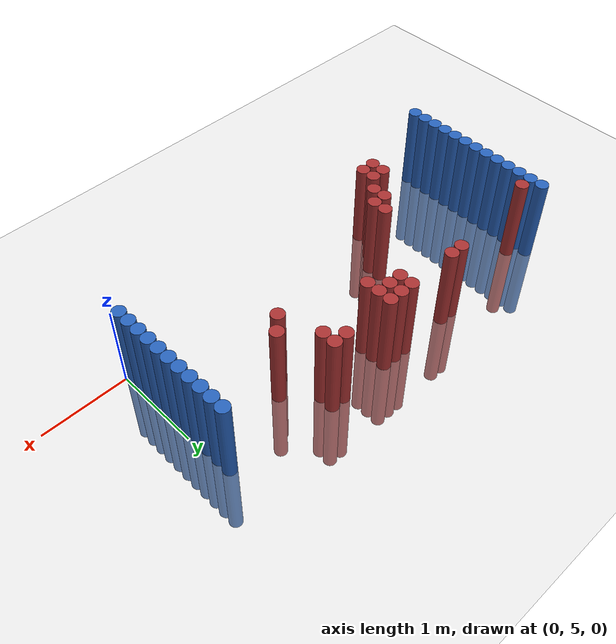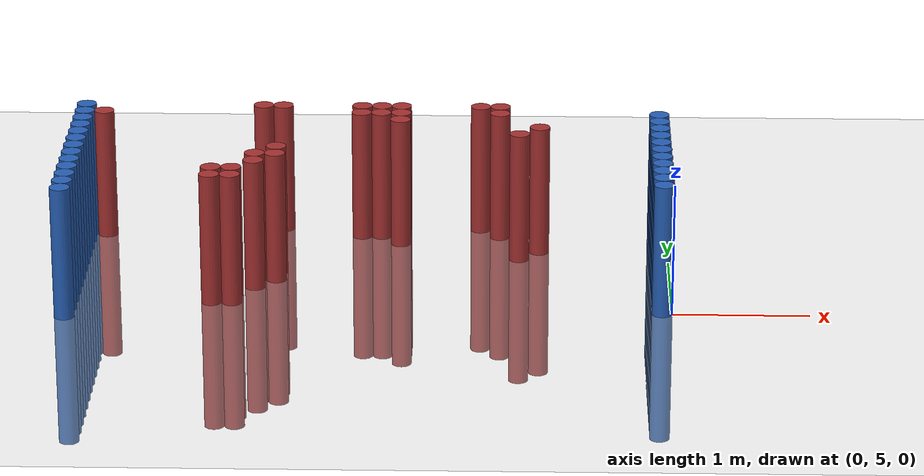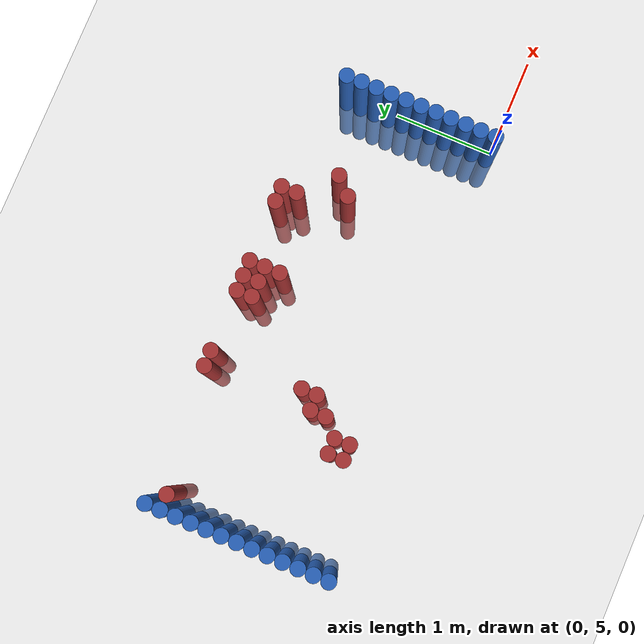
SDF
<sdf version="1.6">
 <world name="default">
  <model name="ground_plane">
   <static>1</static>
   <link name="link">
    <collision name="collision">
     <geometry><plane><normal>0 0 1</normal><size>100 100</size></plane></geometry>
     <surface><friction><ode><mu>100</mu><mu2>50</mu2></ode></friction></surface>
    </collision>
    <visual name="visual">
     <cast_shadows>0</cast_shadows>
     <geometry><plane><normal>0 0 1</normal><size>100 100</size></plane></geometry>
     <material>
      <script><uri>file://media/materials/scripts/gazebo.material</uri><name>Gazebo/Grey</name></script>
     </material>
    </visual>
   </link>
  </model>
  <model name="unit_cylinder_93">
   <static>1</static>
   <pose>-4.425000 4.875000 0.000000 0.000000 0.000000 0.000000</pose>
   <link name="link">
    <inertial>
     <mass>1</mass>
     <inertia><ixx>0.145833</ixx><ixy>0</ixy><ixz>0</ixz><iyy>0.145833</iyy><iyz>0</iyz><izz>0.125</izz></inertia>
    </inertial>
    <collision name="collision">
     <geometry><cylinder><radius>0.075000</radius><length>2</length></cylinder></geometry>
    </collision>
    <visual name="visual">
     <geometry><cylinder><radius>0.075000</radius><length>2</length></cylinder></geometry>
     <material>
      <ambient>0.152000 0.379000 0.720000 1</ambient>
      <diffuse>0.152000 0.379000 0.720000 1</diffuse>
     </material>
     <material>
      <script><name>Gazebo/Grey</name><uri>file://media/materials/scripts/gazebo.material</uri></script>
     </material>
    </visual>
   </link>
  </model>
  <model name="unit_cylinder_94">
   <static>1</static>
   <pose>-0.075000 5.025000 0.000000 0.000000 0.000000 0.000000</pose>
   <link name="link">
    <inertial>
     <mass>1</mass>
     <inertia><ixx>0.145833</ixx><ixy>0</ixy><ixz>0</ixz><iyy>0.145833</iyy><iyz>0</iyz><izz>0.125</izz></inertia>
    </inertial>
    <collision name="collision">
     <geometry><cylinder><radius>0.075000</radius><length>2</length></cylinder></geometry>
    </collision>
    <visual name="visual">
     <geometry><cylinder><radius>0.075000</radius><length>2</length></cylinder></geometry>
     <material>
      <ambient>0.152000 0.379000 0.720000 1</ambient>
      <diffuse>0.152000 0.379000 0.720000 1</diffuse>
     </material>
     <material>
      <script><name>Gazebo/Grey</name><uri>file://media/materials/scripts/gazebo.material</uri></script>
     </material>
    </visual>
   </link>
  </model>
  <model name="unit_cylinder_95">
   <static>1</static>
   <pose>-4.425000 5.025000 0.000000 0.000000 0.000000 0.000000</pose>
   <link name="link">
    <inertial>
     <mass>1</mass>
     <inertia><ixx>0.145833</ixx><ixy>0</ixy><ixz>0</ixz><iyy>0.145833</iyy><iyz>0</iyz><izz>0.125</izz></inertia>
    </inertial>
    <collision name="collision">
     <geometry><cylinder><radius>0.075000</radius><length>2</length></cylinder></geometry>
    </collision>
    <visual name="visual">
     <geometry><cylinder><radius>0.075000</radius><length>2</length></cylinder></geometry>
     <material>
      <ambient>0.152000 0.379000 0.720000 1</ambient>
      <diffuse>0.152000 0.379000 0.720000 1</diffuse>
     </material>
     <material>
      <script><name>Gazebo/Grey</name><uri>file://media/materials/scripts/gazebo.material</uri></script>
     </material>
    </visual>
   </link>
  </model>
  <model name="unit_cylinder_96">
   <static>1</static>
   <pose>-4.425000 5.175000 0.000000 0.000000 0.000000 0.000000</pose>
   <link name="link">
    <inertial>
     <mass>1</mass>
     <inertia><ixx>0.145833</ixx><ixy>0</ixy><ixz>0</ixz><iyy>0.145833</iyy><iyz>0</iyz><izz>0.125</izz></inertia>
    </inertial>
    <collision name="collision">
     <geometry><cylinder><radius>0.075000</radius><length>2</length></cylinder></geometry>
    </collision>
    <visual name="visual">
     <geometry><cylinder><radius>0.075000</radius><length>2</length></cylinder></geometry>
     <material>
      <ambient>0.152000 0.379000 0.720000 1</ambient>
      <diffuse>0.152000 0.379000 0.720000 1</diffuse>
     </material>
     <material>
      <script><name>Gazebo/Grey</name><uri>file://media/materials/scripts/gazebo.material</uri></script>
     </material>
    </visual>
   </link>
  </model>
  <model name="unit_cylinder_97">
   <static>1</static>
   <pose>-4.425000 5.325000 0.000000 0.000000 0.000000 0.000000</pose>
   <link name="link">
    <inertial>
     <mass>1</mass>
     <inertia><ixx>0.145833</ixx><ixy>0</ixy><ixz>0</ixz><iyy>0.145833</iyy><iyz>0</iyz><izz>0.125</izz></inertia>
    </inertial>
    <collision name="collision">
     <geometry><cylinder><radius>0.075000</radius><length>2</length></cylinder></geometry>
    </collision>
    <visual name="visual">
     <geometry><cylinder><radius>0.075000</radius><length>2</length></cylinder></geometry>
     <material>
      <ambient>0.152000 0.379000 0.720000 1</ambient>
      <diffuse>0.152000 0.379000 0.720000 1</diffuse>
     </material>
     <material>
      <script><name>Gazebo/Grey</name><uri>file://media/materials/scripts/gazebo.material</uri></script>
     </material>
    </visual>
   </link>
  </model>
  <model name="unit_cylinder_98">
   <static>1</static>
   <pose>-4.425000 5.475000 0.000000 0.000000 0.000000 0.000000</pose>
   <link name="link">
    <inertial>
     <mass>1</mass>
     <inertia><ixx>0.145833</ixx><ixy>0</ixy><ixz>0</ixz><iyy>0.145833</iyy><iyz>0</iyz><izz>0.125</izz></inertia>
    </inertial>
    <collision name="collision">
     <geometry><cylinder><radius>0.075000</radius><length>2</length></cylinder></geometry>
    </collision>
    <visual name="visual">
     <geometry><cylinder><radius>0.075000</radius><length>2</length></cylinder></geometry>
     <material>
      <ambient>0.152000 0.379000 0.720000 1</ambient>
      <diffuse>0.152000 0.379000 0.720000 1</diffuse>
     </material>
     <material>
      <script><name>Gazebo/Grey</name><uri>file://media/materials/scripts/gazebo.material</uri></script>
     </material>
    </visual>
   </link>
  </model>
  <model name="unit_cylinder_99">
   <static>1</static>
   <pose>-4.425000 5.625000 0.000000 0.000000 0.000000 0.000000</pose>
   <link name="link">
    <inertial>
     <mass>1</mass>
     <inertia><ixx>0.145833</ixx><ixy>0</ixy><ixz>0</ixz><iyy>0.145833</iyy><iyz>0</iyz><izz>0.125</izz></inertia>
    </inertial>
    <collision name="collision">
     <geometry><cylinder><radius>0.075000</radius><length>2</length></cylinder></geometry>
    </collision>
    <visual name="visual">
     <geometry><cylinder><radius>0.075000</radius><length>2</length></cylinder></geometry>
     <material>
      <ambient>0.152000 0.379000 0.720000 1</ambient>
      <diffuse>0.152000 0.379000 0.720000 1</diffuse>
     </material>
     <material>
      <script><name>Gazebo/Grey</name><uri>file://media/materials/scripts/gazebo.material</uri></script>
     </material>
    </visual>
   </link>
  </model>
  <model name="unit_cylinder_100">
   <static>1</static>
   <pose>-4.425000 5.775000 0.000000 0.000000 0.000000 0.000000</pose>
   <link name="link">
    <inertial>
     <mass>1</mass>
     <inertia><ixx>0.145833</ixx><ixy>0</ixy><ixz>0</ixz><iyy>0.145833</iyy><iyz>0</iyz><izz>0.125</izz></inertia>
    </inertial>
    <collision name="collision">
     <geometry><cylinder><radius>0.075000</radius><length>2</length></cylinder></geometry>
    </collision>
    <visual name="visual">
     <geometry><cylinder><radius>0.075000</radius><length>2</length></cylinder></geometry>
     <material>
      <ambient>0.152000 0.379000 0.720000 1</ambient>
      <diffuse>0.152000 0.379000 0.720000 1</diffuse>
     </material>
     <material>
      <script><name>Gazebo/Grey</name><uri>file://media/materials/scripts/gazebo.material</uri></script>
     </material>
    </visual>
   </link>
  </model>
  <model name="unit_cylinder_101">
   <static>1</static>
   <pose>-4.425000 5.925000 0.000000 0.000000 0.000000 0.000000</pose>
   <link name="link">
    <inertial>
     <mass>1</mass>
     <inertia><ixx>0.145833</ixx><ixy>0</ixy><ixz>0</ixz><iyy>0.145833</iyy><iyz>0</iyz><izz>0.125</izz></inertia>
    </inertial>
    <collision name="collision">
     <geometry><cylinder><radius>0.075000</radius><length>2</length></cylinder></geometry>
    </collision>
    <visual name="visual">
     <geometry><cylinder><radius>0.075000</radius><length>2</length></cylinder></geometry>
     <material>
      <ambient>0.152000 0.379000 0.720000 1</ambient>
      <diffuse>0.152000 0.379000 0.720000 1</diffuse>
     </material>
     <material>
      <script><name>Gazebo/Grey</name><uri>file://media/materials/scripts/gazebo.material</uri></script>
     </material>
    </visual>
   </link>
  </model>
  <model name="unit_cylinder_102">
   <static>1</static>
   <pose>-4.425000 6.075000 0.000000 0.000000 0.000000 0.000000</pose>
   <link name="link">
    <inertial>
     <mass>1</mass>
     <inertia><ixx>0.145833</ixx><ixy>0</ixy><ixz>0</ixz><iyy>0.145833</iyy><iyz>0</iyz><izz>0.125</izz></inertia>
    </inertial>
    <collision name="collision">
     <geometry><cylinder><radius>0.075000</radius><length>2</length></cylinder></geometry>
    </collision>
    <visual name="visual">
     <geometry><cylinder><radius>0.075000</radius><length>2</length></cylinder></geometry>
     <material>
      <ambient>0.152000 0.379000 0.720000 1</ambient>
      <diffuse>0.152000 0.379000 0.720000 1</diffuse>
     </material>
     <material>
      <script><name>Gazebo/Grey</name><uri>file://media/materials/scripts/gazebo.material</uri></script>
     </material>
    </visual>
   </link>
  </model>
  <model name="unit_cylinder_103">
   <static>1</static>
   <pose>-4.425000 6.225000 0.000000 0.000000 0.000000 0.000000</pose>
   <link name="link">
    <inertial>
     <mass>1</mass>
     <inertia><ixx>0.145833</ixx><ixy>0</ixy><ixz>0</ixz><iyy>0.145833</iyy><iyz>0</iyz><izz>0.125</izz></inertia>
    </inertial>
    <collision name="collision">
     <geometry><cylinder><radius>0.075000</radius><length>2</length></cylinder></geometry>
    </collision>
    <visual name="visual">
     <geometry><cylinder><radius>0.075000</radius><length>2</length></cylinder></geometry>
     <material>
      <ambient>0.152000 0.379000 0.720000 1</ambient>
      <diffuse>0.152000 0.379000 0.720000 1</diffuse>
     </material>
     <material>
      <script><name>Gazebo/Grey</name><uri>file://media/materials/scripts/gazebo.material</uri></script>
     </material>
    </visual>
   </link>
  </model>
  <model name="unit_cylinder_104">
   <static>1</static>
   <pose>-4.425000 6.375000 0.000000 0.000000 0.000000 0.000000</pose>
   <link name="link">
    <inertial>
     <mass>1</mass>
     <inertia><ixx>0.145833</ixx><ixy>0</ixy><ixz>0</ixz><iyy>0.145833</iyy><iyz>0</iyz><izz>0.125</izz></inertia>
    </inertial>
    <collision name="collision">
     <geometry><cylinder><radius>0.075000</radius><length>2</length></cylinder></geometry>
    </collision>
    <visual name="visual">
     <geometry><cylinder><radius>0.075000</radius><length>2</length></cylinder></geometry>
     <material>
      <ambient>0.152000 0.379000 0.720000 1</ambient>
      <diffuse>0.152000 0.379000 0.720000 1</diffuse>
     </material>
     <material>
      <script><name>Gazebo/Grey</name><uri>file://media/materials/scripts/gazebo.material</uri></script>
     </material>
    </visual>
   </link>
  </model>
  <model name="unit_cylinder_105">
   <static>1</static>
   <pose>-4.425000 6.525000 0.000000 0.000000 0.000000 0.000000</pose>
   <link name="link">
    <inertial>
     <mass>1</mass>
     <inertia><ixx>0.145833</ixx><ixy>0</ixy><ixz>0</ixz><iyy>0.145833</iyy><iyz>0</iyz><izz>0.125</izz></inertia>
    </inertial>
    <collision name="collision">
     <geometry><cylinder><radius>0.075000</radius><length>2</length></cylinder></geometry>
    </collision>
    <visual name="visual">
     <geometry><cylinder><radius>0.075000</radius><length>2</length></cylinder></geometry>
     <material>
      <ambient>0.152000 0.379000 0.720000 1</ambient>
      <diffuse>0.152000 0.379000 0.720000 1</diffuse>
     </material>
     <material>
      <script><name>Gazebo/Grey</name><uri>file://media/materials/scripts/gazebo.material</uri></script>
     </material>
    </visual>
   </link>
  </model>
  <model name="unit_cylinder_106">
   <static>1</static>
   <pose>-4.425000 6.675000 0.000000 0.000000 0.000000 0.000000</pose>
   <link name="link">
    <inertial>
     <mass>1</mass>
     <inertia><ixx>0.145833</ixx><ixy>0</ixy><ixz>0</ixz><iyy>0.145833</iyy><iyz>0</iyz><izz>0.125</izz></inertia>
    </inertial>
    <collision name="collision">
     <geometry><cylinder><radius>0.075000</radius><length>2</length></cylinder></geometry>
    </collision>
    <visual name="visual">
     <geometry><cylinder><radius>0.075000</radius><length>2</length></cylinder></geometry>
     <material>
      <ambient>0.152000 0.379000 0.720000 1</ambient>
      <diffuse>0.152000 0.379000 0.720000 1</diffuse>
     </material>
     <material>
      <script><name>Gazebo/Grey</name><uri>file://media/materials/scripts/gazebo.material</uri></script>
     </material>
    </visual>
   </link>
  </model>
  <model name="unit_cylinder_126">
   <static>1</static>
   <pose>-4.275000 6.525000 0.000000 0.000000 0.000000 0.000000</pose>
   <link name="link">
    <inertial>
     <mass>1</mass>
     <inertia><ixx>0.145833</ixx><ixy>0</ixy><ixz>0</ixz><iyy>0.145833</iyy><iyz>0</iyz><izz>0.125</izz></inertia>
    </inertial>
    <collision name="collision">
     <geometry><cylinder><radius>0.075000</radius><length>2</length></cylinder></geometry>
    </collision>
    <visual name="visual">
     <geometry><cylinder><radius>0.075000</radius><length>2</length></cylinder></geometry>
     <material>
      <ambient>0.648000 0.192000 0.192000 1</ambient>
      <diffuse>0.648000 0.192000 0.192000 1</diffuse>
     </material>
     <material>
      <script><name>Gazebo/Grey</name><uri>file://media/materials/scripts/gazebo.material</uri></script>
     </material>
    </visual>
   </link>
  </model>
  <model name="unit_cylinder_138">
   <static>1</static>
   <pose>-3.375000 5.175000 0.000000 0.000000 0.000000 0.000000</pose>
   <link name="link">
    <inertial>
     <mass>1</mass>
     <inertia><ixx>0.145833</ixx><ixy>0</ixy><ixz>0</ixz><iyy>0.145833</iyy><iyz>0</iyz><izz>0.125</izz></inertia>
    </inertial>
    <collision name="collision">
     <geometry><cylinder><radius>0.075000</radius><length>2</length></cylinder></geometry>
    </collision>
    <visual name="visual">
     <geometry><cylinder><radius>0.075000</radius><length>2</length></cylinder></geometry>
     <material>
      <ambient>0.648000 0.192000 0.192000 1</ambient>
      <diffuse>0.648000 0.192000 0.192000 1</diffuse>
     </material>
     <material>
      <script><name>Gazebo/Grey</name><uri>file://media/materials/scripts/gazebo.material</uri></script>
     </material>
    </visual>
   </link>
  </model>
  <model name="unit_cylinder_139">
   <static>1</static>
   <pose>-3.375000 5.325000 0.000000 0.000000 0.000000 0.000000</pose>
   <link name="link">
    <inertial>
     <mass>1</mass>
     <inertia><ixx>0.145833</ixx><ixy>0</ixy><ixz>0</ixz><iyy>0.145833</iyy><iyz>0</iyz><izz>0.125</izz></inertia>
    </inertial>
    <collision name="collision">
     <geometry><cylinder><radius>0.075000</radius><length>2</length></cylinder></geometry>
    </collision>
    <visual name="visual">
     <geometry><cylinder><radius>0.075000</radius><length>2</length></cylinder></geometry>
     <material>
      <ambient>0.648000 0.192000 0.192000 1</ambient>
      <diffuse>0.648000 0.192000 0.192000 1</diffuse>
     </material>
     <material>
      <script><name>Gazebo/Grey</name><uri>file://media/materials/scripts/gazebo.material</uri></script>
     </material>
    </visual>
   </link>
  </model>
  <model name="unit_cylinder_140">
   <static>1</static>
   <pose>-3.225000 5.175000 0.000000 0.000000 0.000000 0.000000</pose>
   <link name="link">
    <inertial>
     <mass>1</mass>
     <inertia><ixx>0.145833</ixx><ixy>0</ixy><ixz>0</ixz><iyy>0.145833</iyy><iyz>0</iyz><izz>0.125</izz></inertia>
    </inertial>
    <collision name="collision">
     <geometry><cylinder><radius>0.075000</radius><length>2</length></cylinder></geometry>
    </collision>
    <visual name="visual">
     <geometry><cylinder><radius>0.075000</radius><length>2</length></cylinder></geometry>
     <material>
      <ambient>0.648000 0.192000 0.192000 1</ambient>
      <diffuse>0.648000 0.192000 0.192000 1</diffuse>
     </material>
     <material>
      <script><name>Gazebo/Grey</name><uri>file://media/materials/scripts/gazebo.material</uri></script>
     </material>
    </visual>
   </link>
  </model>
  <model name="unit_cylinder_141">
   <static>1</static>
   <pose>-3.225000 5.325000 0.000000 0.000000 0.000000 0.000000</pose>
   <link name="link">
    <inertial>
     <mass>1</mass>
     <inertia><ixx>0.145833</ixx><ixy>0</ixy><ixz>0</ixz><iyy>0.145833</iyy><iyz>0</iyz><izz>0.125</izz></inertia>
    </inertial>
    <collision name="collision">
     <geometry><cylinder><radius>0.075000</radius><length>2</length></cylinder></geometry>
    </collision>
    <visual name="visual">
     <geometry><cylinder><radius>0.075000</radius><length>2</length></cylinder></geometry>
     <material>
      <ambient>0.648000 0.192000 0.192000 1</ambient>
      <diffuse>0.648000 0.192000 0.192000 1</diffuse>
     </material>
     <material>
      <script><name>Gazebo/Grey</name><uri>file://media/materials/scripts/gazebo.material</uri></script>
     </material>
    </visual>
   </link>
  </model>
  <model name="unit_cylinder_145">
   <static>1</static>
   <pose>-3.075000 5.475000 0.000000 0.000000 0.000000 0.000000</pose>
   <link name="link">
    <inertial>
     <mass>1</mass>
     <inertia><ixx>0.145833</ixx><ixy>0</ixy><ixz>0</ixz><iyy>0.145833</iyy><iyz>0</iyz><izz>0.125</izz></inertia>
    </inertial>
    <collision name="collision">
     <geometry><cylinder><radius>0.075000</radius><length>2</length></cylinder></geometry>
    </collision>
    <visual name="visual">
     <geometry><cylinder><radius>0.075000</radius><length>2</length></cylinder></geometry>
     <material>
      <ambient>0.648000 0.192000 0.192000 1</ambient>
      <diffuse>0.648000 0.192000 0.192000 1</diffuse>
     </material>
     <material>
      <script><name>Gazebo/Grey</name><uri>file://media/materials/scripts/gazebo.material</uri></script>
     </material>
    </visual>
   </link>
  </model>
  <model name="unit_cylinder_146">
   <static>1</static>
   <pose>-3.075000 5.625000 0.000000 0.000000 0.000000 0.000000</pose>
   <link name="link">
    <inertial>
     <mass>1</mass>
     <inertia><ixx>0.145833</ixx><ixy>0</ixy><ixz>0</ixz><iyy>0.145833</iyy><iyz>0</iyz><izz>0.125</izz></inertia>
    </inertial>
    <collision name="collision">
     <geometry><cylinder><radius>0.075000</radius><length>2</length></cylinder></geometry>
    </collision>
    <visual name="visual">
     <geometry><cylinder><radius>0.075000</radius><length>2</length></cylinder></geometry>
     <material>
      <ambient>0.648000 0.192000 0.192000 1</ambient>
      <diffuse>0.648000 0.192000 0.192000 1</diffuse>
     </material>
     <material>
      <script><name>Gazebo/Grey</name><uri>file://media/materials/scripts/gazebo.material</uri></script>
     </material>
    </visual>
   </link>
  </model>
  <model name="unit_cylinder_147">
   <static>1</static>
   <pose>-3.075000 6.675000 0.000000 0.000000 0.000000 0.000000</pose>
   <link name="link">
    <inertial>
     <mass>1</mass>
     <inertia><ixx>0.145833</ixx><ixy>0</ixy><ixz>0</ixz><iyy>0.145833</iyy><iyz>0</iyz><izz>0.125</izz></inertia>
    </inertial>
    <collision name="collision">
     <geometry><cylinder><radius>0.075000</radius><length>2</length></cylinder></geometry>
    </collision>
    <visual name="visual">
     <geometry><cylinder><radius>0.075000</radius><length>2</length></cylinder></geometry>
     <material>
      <ambient>0.648000 0.192000 0.192000 1</ambient>
      <diffuse>0.648000 0.192000 0.192000 1</diffuse>
     </material>
     <material>
      <script><name>Gazebo/Grey</name><uri>file://media/materials/scripts/gazebo.material</uri></script>
     </material>
    </visual>
   </link>
  </model>
  <model name="unit_cylinder_152">
   <static>1</static>
   <pose>-2.925000 5.625000 0.000000 0.000000 0.000000 0.000000</pose>
   <link name="link">
    <inertial>
     <mass>1</mass>
     <inertia><ixx>0.145833</ixx><ixy>0</ixy><ixz>0</ixz><iyy>0.145833</iyy><iyz>0</iyz><izz>0.125</izz></inertia>
    </inertial>
    <collision name="collision">
     <geometry><cylinder><radius>0.075000</radius><length>2</length></cylinder></geometry>
    </collision>
    <visual name="visual">
     <geometry><cylinder><radius>0.075000</radius><length>2</length></cylinder></geometry>
     <material>
      <ambient>0.648000 0.192000 0.192000 1</ambient>
      <diffuse>0.648000 0.192000 0.192000 1</diffuse>
     </material>
     <material>
      <script><name>Gazebo/Grey</name><uri>file://media/materials/scripts/gazebo.material</uri></script>
     </material>
    </visual>
   </link>
  </model>
  <model name="unit_cylinder_153">
   <static>1</static>
   <pose>-2.925000 5.775000 0.000000 0.000000 0.000000 0.000000</pose>
   <link name="link">
    <inertial>
     <mass>1</mass>
     <inertia><ixx>0.145833</ixx><ixy>0</ixy><ixz>0</ixz><iyy>0.145833</iyy><iyz>0</iyz><izz>0.125</izz></inertia>
    </inertial>
    <collision name="collision">
     <geometry><cylinder><radius>0.075000</radius><length>2</length></cylinder></geometry>
    </collision>
    <visual name="visual">
     <geometry><cylinder><radius>0.075000</radius><length>2</length></cylinder></geometry>
     <material>
      <ambient>0.648000 0.192000 0.192000 1</ambient>
      <diffuse>0.648000 0.192000 0.192000 1</diffuse>
     </material>
     <material>
      <script><name>Gazebo/Grey</name><uri>file://media/materials/scripts/gazebo.material</uri></script>
     </material>
    </visual>
   </link>
  </model>
  <model name="unit_cylinder_154">
   <static>1</static>
   <pose>-2.925000 6.675000 0.000000 0.000000 0.000000 0.000000</pose>
   <link name="link">
    <inertial>
     <mass>1</mass>
     <inertia><ixx>0.145833</ixx><ixy>0</ixy><ixz>0</ixz><iyy>0.145833</iyy><iyz>0</iyz><izz>0.125</izz></inertia>
    </inertial>
    <collision name="collision">
     <geometry><cylinder><radius>0.075000</radius><length>2</length></cylinder></geometry>
    </collision>
    <visual name="visual">
     <geometry><cylinder><radius>0.075000</radius><length>2</length></cylinder></geometry>
     <material>
      <ambient>0.648000 0.192000 0.192000 1</ambient>
      <diffuse>0.648000 0.192000 0.192000 1</diffuse>
     </material>
     <material>
      <script><name>Gazebo/Grey</name><uri>file://media/materials/scripts/gazebo.material</uri></script>
     </material>
    </visual>
   </link>
  </model>
  <model name="unit_cylinder_156">
   <static>1</static>
   <pose>-2.325000 6.525000 0.000000 0.000000 0.000000 0.000000</pose>
   <link name="link">
    <inertial>
     <mass>1</mass>
     <inertia><ixx>0.145833</ixx><ixy>0</ixy><ixz>0</ixz><iyy>0.145833</iyy><iyz>0</iyz><izz>0.125</izz></inertia>
    </inertial>
    <collision name="collision">
     <geometry><cylinder><radius>0.075000</radius><length>2</length></cylinder></geometry>
    </collision>
    <visual name="visual">
     <geometry><cylinder><radius>0.075000</radius><length>2</length></cylinder></geometry>
     <material>
      <ambient>0.648000 0.192000 0.192000 1</ambient>
      <diffuse>0.648000 0.192000 0.192000 1</diffuse>
     </material>
     <material>
      <script><name>Gazebo/Grey</name><uri>file://media/materials/scripts/gazebo.material</uri></script>
     </material>
    </visual>
   </link>
  </model>
  <model name="unit_cylinder_157">
   <static>1</static>
   <pose>-2.325000 6.675000 0.000000 0.000000 0.000000 0.000000</pose>
   <link name="link">
    <inertial>
     <mass>1</mass>
     <inertia><ixx>0.145833</ixx><ixy>0</ixy><ixz>0</ixz><iyy>0.145833</iyy><iyz>0</iyz><izz>0.125</izz></inertia>
    </inertial>
    <collision name="collision">
     <geometry><cylinder><radius>0.075000</radius><length>2</length></cylinder></geometry>
    </collision>
    <visual name="visual">
     <geometry><cylinder><radius>0.075000</radius><length>2</length></cylinder></geometry>
     <material>
      <ambient>0.648000 0.192000 0.192000 1</ambient>
      <diffuse>0.648000 0.192000 0.192000 1</diffuse>
     </material>
     <material>
      <script><name>Gazebo/Grey</name><uri>file://media/materials/scripts/gazebo.material</uri></script>
     </material>
    </visual>
   </link>
  </model>
  <model name="unit_cylinder_158">
   <static>1</static>
   <pose>-2.175000 6.525000 0.000000 0.000000 0.000000 0.000000</pose>
   <link name="link">
    <inertial>
     <mass>1</mass>
     <inertia><ixx>0.145833</ixx><ixy>0</ixy><ixz>0</ixz><iyy>0.145833</iyy><iyz>0</iyz><izz>0.125</izz></inertia>
    </inertial>
    <collision name="collision">
     <geometry><cylinder><radius>0.075000</radius><length>2</length></cylinder></geometry>
    </collision>
    <visual name="visual">
     <geometry><cylinder><radius>0.075000</radius><length>2</length></cylinder></geometry>
     <material>
      <ambient>0.648000 0.192000 0.192000 1</ambient>
      <diffuse>0.648000 0.192000 0.192000 1</diffuse>
     </material>
     <material>
      <script><name>Gazebo/Grey</name><uri>file://media/materials/scripts/gazebo.material</uri></script>
     </material>
    </visual>
   </link>
  </model>
  <model name="unit_cylinder_159">
   <static>1</static>
   <pose>-2.175000 6.675000 0.000000 0.000000 0.000000 0.000000</pose>
   <link name="link">
    <inertial>
     <mass>1</mass>
     <inertia><ixx>0.145833</ixx><ixy>0</ixy><ixz>0</ixz><iyy>0.145833</iyy><iyz>0</iyz><izz>0.125</izz></inertia>
    </inertial>
    <collision name="collision">
     <geometry><cylinder><radius>0.075000</radius><length>2</length></cylinder></geometry>
    </collision>
    <visual name="visual">
     <geometry><cylinder><radius>0.075000</radius><length>2</length></cylinder></geometry>
     <material>
      <ambient>0.648000 0.192000 0.192000 1</ambient>
      <diffuse>0.648000 0.192000 0.192000 1</diffuse>
     </material>
     <material>
      <script><name>Gazebo/Grey</name><uri>file://media/materials/scripts/gazebo.material</uri></script>
     </material>
    </visual>
   </link>
  </model>
  <model name="unit_cylinder_160">
   <static>1</static>
   <pose>-2.025000 6.375000 0.000000 0.000000 0.000000 0.000000</pose>
   <link name="link">
    <inertial>
     <mass>1</mass>
     <inertia><ixx>0.145833</ixx><ixy>0</ixy><ixz>0</ixz><iyy>0.145833</iyy><iyz>0</iyz><izz>0.125</izz></inertia>
    </inertial>
    <collision name="collision">
     <geometry><cylinder><radius>0.075000</radius><length>2</length></cylinder></geometry>
    </collision>
    <visual name="visual">
     <geometry><cylinder><radius>0.075000</radius><length>2</length></cylinder></geometry>
     <material>
      <ambient>0.648000 0.192000 0.192000 1</ambient>
      <diffuse>0.648000 0.192000 0.192000 1</diffuse>
     </material>
     <material>
      <script><name>Gazebo/Grey</name><uri>file://media/materials/scripts/gazebo.material</uri></script>
     </material>
    </visual>
   </link>
  </model>
  <model name="unit_cylinder_161">
   <static>1</static>
   <pose>-2.025000 6.525000 0.000000 0.000000 0.000000 0.000000</pose>
   <link name="link">
    <inertial>
     <mass>1</mass>
     <inertia><ixx>0.145833</ixx><ixy>0</ixy><ixz>0</ixz><iyy>0.145833</iyy><iyz>0</iyz><izz>0.125</izz></inertia>
    </inertial>
    <collision name="collision">
     <geometry><cylinder><radius>0.075000</radius><length>2</length></cylinder></geometry>
    </collision>
    <visual name="visual">
     <geometry><cylinder><radius>0.075000</radius><length>2</length></cylinder></geometry>
     <material>
      <ambient>0.648000 0.192000 0.192000 1</ambient>
      <diffuse>0.648000 0.192000 0.192000 1</diffuse>
     </material>
     <material>
      <script><name>Gazebo/Grey</name><uri>file://media/materials/scripts/gazebo.material</uri></script>
     </material>
    </visual>
   </link>
  </model>
  <model name="unit_cylinder_162">
   <static>1</static>
   <pose>-2.025000 6.675000 0.000000 0.000000 0.000000 0.000000</pose>
   <link name="link">
    <inertial>
     <mass>1</mass>
     <inertia><ixx>0.145833</ixx><ixy>0</ixy><ixz>0</ixz><iyy>0.145833</iyy><iyz>0</iyz><izz>0.125</izz></inertia>
    </inertial>
    <collision name="collision">
     <geometry><cylinder><radius>0.075000</radius><length>2</length></cylinder></geometry>
    </collision>
    <visual name="visual">
     <geometry><cylinder><radius>0.075000</radius><length>2</length></cylinder></geometry>
     <material>
      <ambient>0.648000 0.192000 0.192000 1</ambient>
      <diffuse>0.648000 0.192000 0.192000 1</diffuse>
     </material>
     <material>
      <script><name>Gazebo/Grey</name><uri>file://media/materials/scripts/gazebo.material</uri></script>
     </material>
    </visual>
   </link>
  </model>
  <model name="unit_cylinder_166">
   <static>1</static>
   <pose>-1.425000 6.675000 0.000000 0.000000 0.000000 0.000000</pose>
   <link name="link">
    <inertial>
     <mass>1</mass>
     <inertia><ixx>0.145833</ixx><ixy>0</ixy><ixz>0</ixz><iyy>0.145833</iyy><iyz>0</iyz><izz>0.125</izz></inertia>
    </inertial>
    <collision name="collision">
     <geometry><cylinder><radius>0.075000</radius><length>2</length></cylinder></geometry>
    </collision>
    <visual name="visual">
     <geometry><cylinder><radius>0.075000</radius><length>2</length></cylinder></geometry>
     <material>
      <ambient>0.648000 0.192000 0.192000 1</ambient>
      <diffuse>0.648000 0.192000 0.192000 1</diffuse>
     </material>
     <material>
      <script><name>Gazebo/Grey</name><uri>file://media/materials/scripts/gazebo.material</uri></script>
     </material>
    </visual>
   </link>
  </model>
  <model name="unit_cylinder_167">
   <static>1</static>
   <pose>-1.275000 6.525000 0.000000 0.000000 0.000000 0.000000</pose>
   <link name="link">
    <inertial>
     <mass>1</mass>
     <inertia><ixx>0.145833</ixx><ixy>0</ixy><ixz>0</ixz><iyy>0.145833</iyy><iyz>0</iyz><izz>0.125</izz></inertia>
    </inertial>
    <collision name="collision">
     <geometry><cylinder><radius>0.075000</radius><length>2</length></cylinder></geometry>
    </collision>
    <visual name="visual">
     <geometry><cylinder><radius>0.075000</radius><length>2</length></cylinder></geometry>
     <material>
      <ambient>0.648000 0.192000 0.192000 1</ambient>
      <diffuse>0.648000 0.192000 0.192000 1</diffuse>
     </material>
     <material>
      <script><name>Gazebo/Grey</name><uri>file://media/materials/scripts/gazebo.material</uri></script>
     </material>
    </visual>
   </link>
  </model>
  <model name="unit_cylinder_168">
   <static>1</static>
   <pose>-1.275000 6.675000 0.000000 0.000000 0.000000 0.000000</pose>
   <link name="link">
    <inertial>
     <mass>1</mass>
     <inertia><ixx>0.145833</ixx><ixy>0</ixy><ixz>0</ixz><iyy>0.145833</iyy><iyz>0</iyz><izz>0.125</izz></inertia>
    </inertial>
    <collision name="collision">
     <geometry><cylinder><radius>0.075000</radius><length>2</length></cylinder></geometry>
    </collision>
    <visual name="visual">
     <geometry><cylinder><radius>0.075000</radius><length>2</length></cylinder></geometry>
     <material>
      <ambient>0.648000 0.192000 0.192000 1</ambient>
      <diffuse>0.648000 0.192000 0.192000 1</diffuse>
     </material>
     <material>
      <script><name>Gazebo/Grey</name><uri>file://media/materials/scripts/gazebo.material</uri></script>
     </material>
    </visual>
   </link>
  </model>
  <model name="unit_cylinder_171">
   <static>1</static>
   <pose>-1.125000 6.075000 0.000000 0.000000 0.000000 0.000000</pose>
   <link name="link">
    <inertial>
     <mass>1</mass>
     <inertia><ixx>0.145833</ixx><ixy>0</ixy><ixz>0</ixz><iyy>0.145833</iyy><iyz>0</iyz><izz>0.125</izz></inertia>
    </inertial>
    <collision name="collision">
     <geometry><cylinder><radius>0.075000</radius><length>2</length></cylinder></geometry>
    </collision>
    <visual name="visual">
     <geometry><cylinder><radius>0.075000</radius><length>2</length></cylinder></geometry>
     <material>
      <ambient>0.648000 0.192000 0.192000 1</ambient>
      <diffuse>0.648000 0.192000 0.192000 1</diffuse>
     </material>
     <material>
      <script><name>Gazebo/Grey</name><uri>file://media/materials/scripts/gazebo.material</uri></script>
     </material>
    </visual>
   </link>
  </model>
  <model name="unit_cylinder_176">
   <static>1</static>
   <pose>-0.975000 6.225000 0.000000 0.000000 0.000000 0.000000</pose>
   <link name="link">
    <inertial>
     <mass>1</mass>
     <inertia><ixx>0.145833</ixx><ixy>0</ixy><ixz>0</ixz><iyy>0.145833</iyy><iyz>0</iyz><izz>0.125</izz></inertia>
    </inertial>
    <collision name="collision">
     <geometry><cylinder><radius>0.075000</radius><length>2</length></cylinder></geometry>
    </collision>
    <visual name="visual">
     <geometry><cylinder><radius>0.075000</radius><length>2</length></cylinder></geometry>
     <material>
      <ambient>0.648000 0.192000 0.192000 1</ambient>
      <diffuse>0.648000 0.192000 0.192000 1</diffuse>
     </material>
     <material>
      <script><name>Gazebo/Grey</name><uri>file://media/materials/scripts/gazebo.material</uri></script>
     </material>
    </visual>
   </link>
  </model>
  <model name="unit_cylinder_203">
   <static>1</static>
   <pose>-0.075000 5.175000 0.000000 0.000000 0.000000 0.000000</pose>
   <link name="link">
    <inertial>
     <mass>1</mass>
     <inertia><ixx>0.145833</ixx><ixy>0</ixy><ixz>0</ixz><iyy>0.145833</iyy><iyz>0</iyz><izz>0.125</izz></inertia>
    </inertial>
    <collision name="collision">
     <geometry><cylinder><radius>0.075000</radius><length>2</length></cylinder></geometry>
    </collision>
    <visual name="visual">
     <geometry><cylinder><radius>0.075000</radius><length>2</length></cylinder></geometry>
     <material>
      <ambient>0.152000 0.379000 0.720000 1</ambient>
      <diffuse>0.152000 0.379000 0.720000 1</diffuse>
     </material>
     <material>
      <script><name>Gazebo/Grey</name><uri>file://media/materials/scripts/gazebo.material</uri></script>
     </material>
    </visual>
   </link>
  </model>
  <model name="unit_cylinder_204">
   <static>1</static>
   <pose>-0.075000 5.325000 0.000000 0.000000 0.000000 0.000000</pose>
   <link name="link">
    <inertial>
     <mass>1</mass>
     <inertia><ixx>0.145833</ixx><ixy>0</ixy><ixz>0</ixz><iyy>0.145833</iyy><iyz>0</iyz><izz>0.125</izz></inertia>
    </inertial>
    <collision name="collision">
     <geometry><cylinder><radius>0.075000</radius><length>2</length></cylinder></geometry>
    </collision>
    <visual name="visual">
     <geometry><cylinder><radius>0.075000</radius><length>2</length></cylinder></geometry>
     <material>
      <ambient>0.152000 0.379000 0.720000 1</ambient>
      <diffuse>0.152000 0.379000 0.720000 1</diffuse>
     </material>
     <material>
      <script><name>Gazebo/Grey</name><uri>file://media/materials/scripts/gazebo.material</uri></script>
     </material>
    </visual>
   </link>
  </model>
  <model name="unit_cylinder_205">
   <static>1</static>
   <pose>-0.075000 5.475000 0.000000 0.000000 0.000000 0.000000</pose>
   <link name="link">
    <inertial>
     <mass>1</mass>
     <inertia><ixx>0.145833</ixx><ixy>0</ixy><ixz>0</ixz><iyy>0.145833</iyy><iyz>0</iyz><izz>0.125</izz></inertia>
    </inertial>
    <collision name="collision">
     <geometry><cylinder><radius>0.075000</radius><length>2</length></cylinder></geometry>
    </collision>
    <visual name="visual">
     <geometry><cylinder><radius>0.075000</radius><length>2</length></cylinder></geometry>
     <material>
      <ambient>0.152000 0.379000 0.720000 1</ambient>
      <diffuse>0.152000 0.379000 0.720000 1</diffuse>
     </material>
     <material>
      <script><name>Gazebo/Grey</name><uri>file://media/materials/scripts/gazebo.material</uri></script>
     </material>
    </visual>
   </link>
  </model>
  <model name="unit_cylinder_206">
   <static>1</static>
   <pose>-0.075000 5.625000 0.000000 0.000000 0.000000 0.000000</pose>
   <link name="link">
    <inertial>
     <mass>1</mass>
     <inertia><ixx>0.145833</ixx><ixy>0</ixy><ixz>0</ixz><iyy>0.145833</iyy><iyz>0</iyz><izz>0.125</izz></inertia>
    </inertial>
    <collision name="collision">
     <geometry><cylinder><radius>0.075000</radius><length>2</length></cylinder></geometry>
    </collision>
    <visual name="visual">
     <geometry><cylinder><radius>0.075000</radius><length>2</length></cylinder></geometry>
     <material>
      <ambient>0.152000 0.379000 0.720000 1</ambient>
      <diffuse>0.152000 0.379000 0.720000 1</diffuse>
     </material>
     <material>
      <script><name>Gazebo/Grey</name><uri>file://media/materials/scripts/gazebo.material</uri></script>
     </material>
    </visual>
   </link>
  </model>
  <model name="unit_cylinder_207">
   <static>1</static>
   <pose>-0.075000 5.775000 0.000000 0.000000 0.000000 0.000000</pose>
   <link name="link">
    <inertial>
     <mass>1</mass>
     <inertia><ixx>0.145833</ixx><ixy>0</ixy><ixz>0</ixz><iyy>0.145833</iyy><iyz>0</iyz><izz>0.125</izz></inertia>
    </inertial>
    <collision name="collision">
     <geometry><cylinder><radius>0.075000</radius><length>2</length></cylinder></geometry>
    </collision>
    <visual name="visual">
     <geometry><cylinder><radius>0.075000</radius><length>2</length></cylinder></geometry>
     <material>
      <ambient>0.152000 0.379000 0.720000 1</ambient>
      <diffuse>0.152000 0.379000 0.720000 1</diffuse>
     </material>
     <material>
      <script><name>Gazebo/Grey</name><uri>file://media/materials/scripts/gazebo.material</uri></script>
     </material>
    </visual>
   </link>
  </model>
  <model name="unit_cylinder_208">
   <static>1</static>
   <pose>-0.075000 5.925000 0.000000 0.000000 0.000000 0.000000</pose>
   <link name="link">
    <inertial>
     <mass>1</mass>
     <inertia><ixx>0.145833</ixx><ixy>0</ixy><ixz>0</ixz><iyy>0.145833</iyy><iyz>0</iyz><izz>0.125</izz></inertia>
    </inertial>
    <collision name="collision">
     <geometry><cylinder><radius>0.075000</radius><length>2</length></cylinder></geometry>
    </collision>
    <visual name="visual">
     <geometry><cylinder><radius>0.075000</radius><length>2</length></cylinder></geometry>
     <material>
      <ambient>0.152000 0.379000 0.720000 1</ambient>
      <diffuse>0.152000 0.379000 0.720000 1</diffuse>
     </material>
     <material>
      <script><name>Gazebo/Grey</name><uri>file://media/materials/scripts/gazebo.material</uri></script>
     </material>
    </visual>
   </link>
  </model>
  <model name="unit_cylinder_209">
   <static>1</static>
   <pose>-0.075000 6.075000 0.000000 0.000000 0.000000 0.000000</pose>
   <link name="link">
    <inertial>
     <mass>1</mass>
     <inertia><ixx>0.145833</ixx><ixy>0</ixy><ixz>0</ixz><iyy>0.145833</iyy><iyz>0</iyz><izz>0.125</izz></inertia>
    </inertial>
    <collision name="collision">
     <geometry><cylinder><radius>0.075000</radius><length>2</length></cylinder></geometry>
    </collision>
    <visual name="visual">
     <geometry><cylinder><radius>0.075000</radius><length>2</length></cylinder></geometry>
     <material>
      <ambient>0.152000 0.379000 0.720000 1</ambient>
      <diffuse>0.152000 0.379000 0.720000 1</diffuse>
     </material>
     <material>
      <script><name>Gazebo/Grey</name><uri>file://media/materials/scripts/gazebo.material</uri></script>
     </material>
    </visual>
   </link>
  </model>
  <model name="unit_cylinder_210">
   <static>1</static>
   <pose>-0.075000 6.225000 0.000000 0.000000 0.000000 0.000000</pose>
   <link name="link">
    <inertial>
     <mass>1</mass>
     <inertia><ixx>0.145833</ixx><ixy>0</ixy><ixz>0</ixz><iyy>0.145833</iyy><iyz>0</iyz><izz>0.125</izz></inertia>
    </inertial>
    <collision name="collision">
     <geometry><cylinder><radius>0.075000</radius><length>2</length></cylinder></geometry>
    </collision>
    <visual name="visual">
     <geometry><cylinder><radius>0.075000</radius><length>2</length></cylinder></geometry>
     <material>
      <ambient>0.152000 0.379000 0.720000 1</ambient>
      <diffuse>0.152000 0.379000 0.720000 1</diffuse>
     </material>
     <material>
      <script><name>Gazebo/Grey</name><uri>file://media/materials/scripts/gazebo.material</uri></script>
     </material>
    </visual>
   </link>
  </model>
  <model name="unit_cylinder_211">
   <static>1</static>
   <pose>-0.075000 6.375000 0.000000 0.000000 0.000000 0.000000</pose>
   <link name="link">
    <inertial>
     <mass>1</mass>
     <inertia><ixx>0.145833</ixx><ixy>0</ixy><ixz>0</ixz><iyy>0.145833</iyy><iyz>0</iyz><izz>0.125</izz></inertia>
    </inertial>
    <collision name="collision">
     <geometry><cylinder><radius>0.075000</radius><length>2</length></cylinder></geometry>
    </collision>
    <visual name="visual">
     <geometry><cylinder><radius>0.075000</radius><length>2</length></cylinder></geometry>
     <material>
      <ambient>0.152000 0.379000 0.720000 1</ambient>
      <diffuse>0.152000 0.379000 0.720000 1</diffuse>
     </material>
     <material>
      <script><name>Gazebo/Grey</name><uri>file://media/materials/scripts/gazebo.material</uri></script>
     </material>
    </visual>
   </link>
  </model>
  <model name="unit_cylinder_212">
   <static>1</static>
   <pose>-0.075000 6.525000 0.000000 0.000000 0.000000 0.000000</pose>
   <link name="link">
    <inertial>
     <mass>1</mass>
     <inertia><ixx>0.145833</ixx><ixy>0</ixy><ixz>0</ixz><iyy>0.145833</iyy><iyz>0</iyz><izz>0.125</izz></inertia>
    </inertial>
    <collision name="collision">
     <geometry><cylinder><radius>0.075000</radius><length>2</length></cylinder></geometry>
    </collision>
    <visual name="visual">
     <geometry><cylinder><radius>0.075000</radius><length>2</length></cylinder></geometry>
     <material>
      <ambient>0.152000 0.379000 0.720000 1</ambient>
      <diffuse>0.152000 0.379000 0.720000 1</diffuse>
     </material>
     <material>
      <script><name>Gazebo/Grey</name><uri>file://media/materials/scripts/gazebo.material</uri></script>
     </material>
    </visual>
   </link>
  </model>
 </world>
</sdf>
